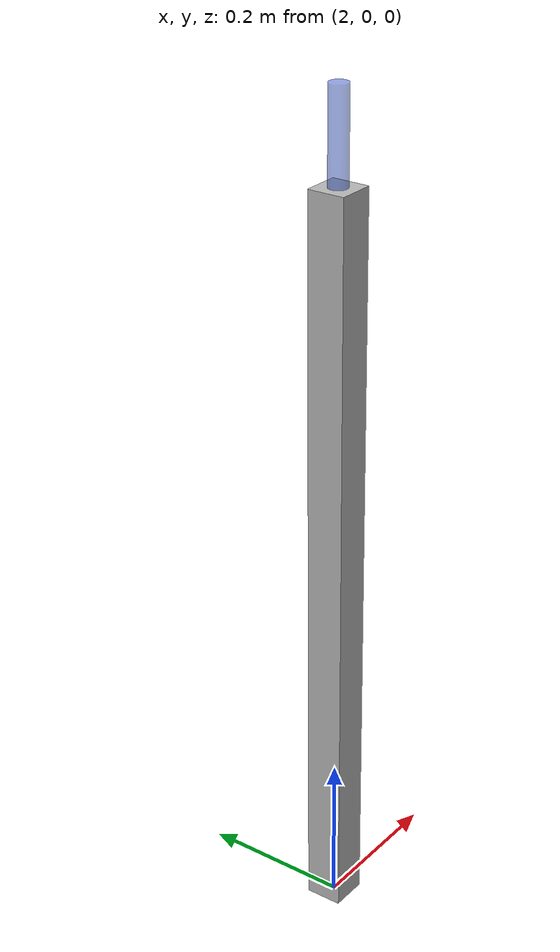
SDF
<?xml version='1.0'?>
<sdf version='1.6'>
    <model name="baton_and_stand">
	<static>true</static>
      <link name="baton_stand">
        <pose>2.0 0 0.5 0 0 0</pose>

        <collision name="baton_stand_collision">
          <geometry>
			  <box>
				<size>0.05 0.05 1.0</size>
			  </box>
          </geometry>
        </collision>

        <visual name="baton_stand_visual">
          <geometry>
			  <box>
				<size>0.05 0.05 1.0</size>
			  </box>
          </geometry>
        </visual>
      </link>

      <model name="baton">
	    <pose>2.0 0 1.06 0 0 0</pose>
		  <link name="baton">
			  <inertial>
				<mass>0.05</mass>
				<inertia>
				  <ixx>0.0001</ixx>
				  <ixy>0</ixy>
				  <ixz>0</ixz>
				  <iyy>0.0001</iyy>
				  <iyz>0</iyz>
				  <izz>0.0001</izz>
				</inertia>
			  </inertial>

			<collision name="baton_collision">
			  <geometry>
			    <cylinder>
				  <radius>0.0125</radius>
				  <length>0.12</length>
			    </cylinder>
			  </geometry>
			</collision>

			<visual name="baton_visual">
			  <geometry>
			    <cylinder>
				  <radius>0.0125</radius>
				  <length>0.12</length>
			    </cylinder>
		      </geometry>
			  <material>
			    <lighting>1</lighting>
				  <script>
					<name>Gazebo/BlueTransparent</name>
					<uri>file://media/materials/scripts/gazebo.material</uri>
				  </script>
			  </material>
			</visual>
        </link>
	  </model>
    </model>
</sdf>
